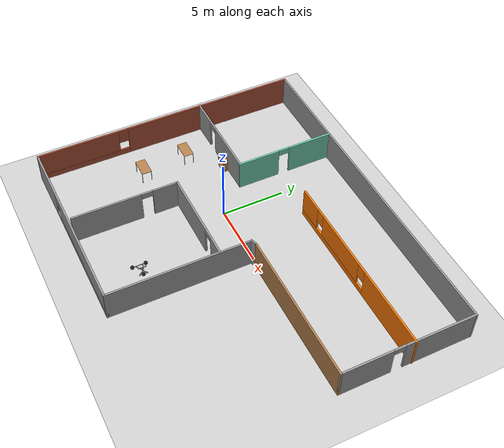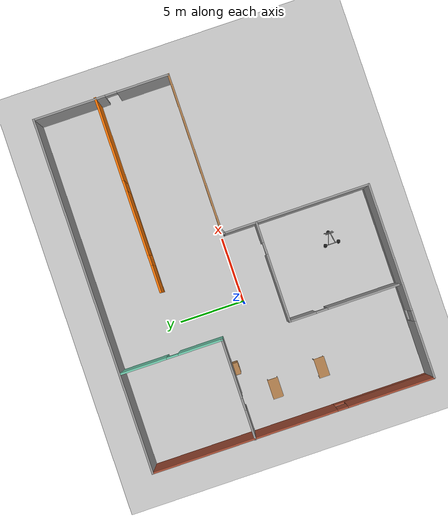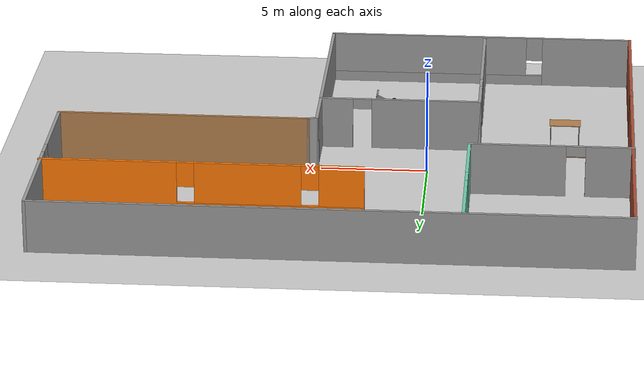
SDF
<sdf version="1.6">
 <world name="default">
  <model name="ground_plane">
   <static>1</static>
   <link name="link">
    <collision name="collision">
     <geometry><plane><normal>0 0 1</normal><size>100 100</size></plane></geometry>
     <surface>
      <contact><collide_bitmask>65535</collide_bitmask></contact>
      <friction><ode><mu>100</mu><mu2>50</mu2></ode></friction>
     </surface>
    </collision>
    <visual name="visual">
     <cast_shadows>0</cast_shadows>
     <geometry><plane><normal>0 0 1</normal><size>100 100</size></plane></geometry>
     <material>
      <script><uri>file://media/materials/scripts/gazebo.material</uri><name>Gazebo/Grey</name></script>
     </material>
    </visual>
   </link>
  </model>
  <model name="my_building_2">
   <pose>3.93106 -0.568762 0 0 -0 0</pose>
   <link name="Wall_0">
    <collision name="Wall_0_Collision">
     <geometry><box><size>12 0.15 2.5</size></box></geometry>
     <pose>0 0 1.25 0 -0 0</pose>
    </collision>
    <visual name="Wall_0_Visual">
     <pose>0 0 1.25 0 -0 0</pose>
     <geometry><box><size>12 0.15 2.5</size></box></geometry>
     <material>
      <script><uri>file://media/materials/scripts/gazebo.material</uri><name>Gazebo/Wood</name></script>
      <ambient>1 1 1 1</ambient>
     </material>
     <meta><layer>0</layer></meta>
    </visual>
    <pose>7.62074 0.45 0 0 -0 0</pose>
   </link>
   <link name="Wall_1">
    <pose>13.5457 5.625 0 0 -0 1.5708</pose>
    <visual name="Wall_1_Visual_0">
     <pose>-3.23149 0 1.25 0 -0 0</pose>
     <geometry><box><size>4.03702 0.15 2.5</size></box></geometry>
     <material>
      <script><uri>file://media/materials/scripts/gazebo.material</uri><name>Gazebo/Grey</name></script>
      <ambient>1 1 1 1</ambient>
     </material>
     <meta><layer>0</layer></meta>
    </visual>
    <collision name="Wall_1_Collision_0">
     <geometry><box><size>4.03702 0.15 2.5</size></box></geometry>
     <pose>-3.23149 0 1.25 0 -0 0</pose>
    </collision>
    <visual name="Wall_1_Visual_1">
     <pose>2.46851 0 1.25 0 -0 0</pose>
     <geometry><box><size>5.56298 0.15 2.5</size></box></geometry>
     <material>
      <script><uri>file://media/materials/scripts/gazebo.material</uri><name>Gazebo/Grey</name></script>
      <ambient>1 1 1 1</ambient>
     </material>
     <meta><layer>0</layer></meta>
    </visual>
    <collision name="Wall_1_Collision_1">
     <geometry><box><size>5.56298 0.15 2.5</size></box></geometry>
     <pose>2.46851 0 1.25 0 -0 0</pose>
    </collision>
    <visual name="Wall_1_Visual_2">
     <pose>-0.762977 0 2.25 0 -0 0</pose>
     <geometry><box><size>0.9 0.15 0.5</size></box></geometry>
     <material>
      <script><uri>file://media/materials/scripts/gazebo.material</uri><name>Gazebo/Grey</name></script>
      <ambient>1 1 1 1</ambient>
     </material>
     <meta><layer>0</layer></meta>
    </visual>
    <collision name="Wall_1_Collision_2">
     <geometry><box><size>0.9 0.15 0.5</size></box></geometry>
     <pose>-0.762977 0 2.25 0 -0 0</pose>
    </collision>
   </link>
   <link name="Wall_11">
    <pose>-9.79367 2.94549 0 0 -0 0</pose>
    <visual name="Wall_11_Visual_0">
     <pose>-2.72781 0 1.25 0 -0 0</pose>
     <geometry><box><size>2.29438 0.15 2.5</size></box></geometry>
     <material>
      <script><uri>file://media/materials/scripts/gazebo.material</uri><name>Gazebo/Grey</name></script>
      <ambient>1 1 1 1</ambient>
     </material>
     <meta><layer>0</layer></meta>
    </visual>
    <collision name="Wall_11_Collision_0">
     <geometry><box><size>2.29438 0.15 2.5</size></box></geometry>
     <pose>-2.72781 0 1.25 0 -0 0</pose>
    </collision>
    <visual name="Wall_11_Visual_1">
     <pose>1.59719 0 1.25 0 -0 0</pose>
     <geometry><box><size>4.55562 0.15 2.5</size></box></geometry>
     <material>
      <script><uri>file://media/materials/scripts/gazebo.material</uri><name>Gazebo/Grey</name></script>
      <ambient>1 1 1 1</ambient>
     </material>
     <meta><layer>0</layer></meta>
    </visual>
    <collision name="Wall_11_Collision_1">
     <geometry><box><size>4.55562 0.15 2.5</size></box></geometry>
     <pose>1.59719 0 1.25 0 -0 0</pose>
    </collision>
    <visual name="Wall_11_Visual_2">
     <pose>-1.13062 0 2.25 0 -0 0</pose>
     <geometry><box><size>0.9 0.15 0.5</size></box></geometry>
     <material>
      <script><uri>file://media/materials/scripts/gazebo.material</uri><name>Gazebo/Grey</name></script>
      <ambient>1 1 1 1</ambient>
     </material>
     <meta><layer>0</layer></meta>
    </visual>
    <collision name="Wall_11_Collision_2">
     <geometry><box><size>0.9 0.15 0.5</size></box></geometry>
     <pose>-1.13062 0 2.25 0 -0 0</pose>
    </collision>
   </link>
   <link name="Wall_12">
    <pose>-5.99367 6.87049 0 0 -0 1.5708</pose>
    <visual name="Wall_12_Visual_0">
     <pose>-2.28693 0 1.25 0 -0 0</pose>
     <geometry><box><size>3.42615 0.15 2.5</size></box></geometry>
     <material>
      <script><uri>file://media/materials/scripts/gazebo.material</uri><name>Gazebo/Grey</name></script>
      <ambient>0.435294 0.796078 0.67451 1</ambient>
     </material>
     <meta><layer>0</layer></meta>
    </visual>
    <collision name="Wall_12_Collision_0">
     <geometry><box><size>3.42615 0.15 2.5</size></box></geometry>
     <pose>-2.28693 0 1.25 0 -0 0</pose>
    </collision>
    <visual name="Wall_12_Visual_1">
     <pose>2.16307 0 1.25 0 -0 0</pose>
     <geometry><box><size>3.67385 0.15 2.5</size></box></geometry>
     <material>
      <script><uri>file://media/materials/scripts/gazebo.material</uri><name>Gazebo/Grey</name></script>
      <ambient>0.435294 0.796078 0.67451 1</ambient>
     </material>
     <meta><layer>0</layer></meta>
    </visual>
    <collision name="Wall_12_Collision_1">
     <geometry><box><size>3.67385 0.15 2.5</size></box></geometry>
     <pose>2.16307 0 1.25 0 -0 0</pose>
    </collision>
    <visual name="Wall_12_Visual_2">
     <pose>-0.123853 0 2.25 0 -0 0</pose>
     <geometry><box><size>0.9 0.15 0.5</size></box></geometry>
     <material>
      <script><uri>file://media/materials/scripts/gazebo.material</uri><name>Gazebo/Grey</name></script>
      <ambient>0.435294 0.796078 0.67451 1</ambient>
     </material>
     <meta><layer>0</layer></meta>
    </visual>
    <collision name="Wall_12_Collision_2">
     <geometry><box><size>0.9 0.15 0.5</size></box></geometry>
     <pose>-0.123853 0 2.25 0 -0 0</pose>
    </collision>
   </link>
   <link name="Wall_14">
    <pose>6.16866 6.05106 0 0 -0 3.14159</pose>
    <visual name="Wall_14_Visual_0">
     <pose>-4.30847 0 1.25 0 -0 0</pose>
     <geometry><box><size>6.38305 0.15 2.5</size></box></geometry>
     <material>
      <script><uri>file://media/materials/scripts/gazebo.material</uri><name>Gazebo/Grey</name></script>
      <ambient>0.996078 0.47451 0.0196078 1</ambient>
     </material>
     <meta><layer>0</layer></meta>
    </visual>
    <collision name="Wall_14_Collision_0">
     <geometry><box><size>6.38305 0.15 2.5</size></box></geometry>
     <pose>-4.30847 0 1.25 0 -0 0</pose>
    </collision>
    <visual name="Wall_14_Visual_1">
     <pose>3.19152 0 0.25 0 -0 0</pose>
     <geometry><box><size>8.61695 0.15 0.5</size></box></geometry>
     <material>
      <script><uri>file://media/materials/scripts/gazebo.material</uri><name>Gazebo/Grey</name></script>
      <ambient>0.996078 0.47451 0.0196078 1</ambient>
     </material>
     <meta><layer>0</layer></meta>
    </visual>
    <collision name="Wall_14_Collision_1">
     <geometry><box><size>8.61695 0.15 0.5</size></box></geometry>
     <pose>3.19152 0 0.25 0 -0 0</pose>
    </collision>
    <visual name="Wall_14_Visual_2">
     <pose>2.1413 0 1.5 0 -0 0</pose>
     <geometry><box><size>4.9165 0.15 2</size></box></geometry>
     <material>
      <script><uri>file://media/materials/scripts/gazebo.material</uri><name>Gazebo/Grey</name></script>
      <ambient>0.996078 0.47451 0.0196078 1</ambient>
     </material>
     <meta><layer>0</layer></meta>
    </visual>
    <collision name="Wall_14_Collision_2">
     <geometry><box><size>4.9165 0.15 2</size></box></geometry>
     <pose>2.1413 0 1.5 0 -0 0</pose>
    </collision>
    <visual name="Wall_14_Visual_3">
     <pose>6.44977 0 1.5 0 -0 0</pose>
     <geometry><box><size>2.10045 0.15 2</size></box></geometry>
     <material>
      <script><uri>file://media/materials/scripts/gazebo.material</uri><name>Gazebo/Grey</name></script>
      <ambient>0.996078 0.47451 0.0196078 1</ambient>
     </material>
     <meta><layer>0</layer></meta>
    </visual>
    <collision name="Wall_14_Collision_3">
     <geometry><box><size>2.10045 0.15 2</size></box></geometry>
     <pose>6.44977 0 1.5 0 -0 0</pose>
    </collision>
    <visual name="Wall_14_Visual_4">
     <pose>-0.716949 0 1.9 0 -0 0</pose>
     <geometry><box><size>0.8 0.15 1.2</size></box></geometry>
     <material>
      <script><uri>file://media/materials/scripts/gazebo.material</uri><name>Gazebo/Grey</name></script>
      <ambient>0.996078 0.47451 0.0196078 1</ambient>
     </material>
     <meta><layer>0</layer></meta>
    </visual>
    <collision name="Wall_14_Collision_4">
     <geometry><box><size>0.8 0.15 1.2</size></box></geometry>
     <pose>-0.716949 0 1.9 0 -0 0</pose>
    </collision>
    <visual name="Wall_14_Visual_5">
     <pose>4.99955 0 1.9 0 -0 0</pose>
     <geometry><box><size>0.8 0.15 1.2</size></box></geometry>
     <material>
      <script><uri>file://media/materials/scripts/gazebo.material</uri><name>Gazebo/Grey</name></script>
      <ambient>0.996078 0.47451 0.0196078 1</ambient>
     </material>
     <meta><layer>0</layer></meta>
    </visual>
    <collision name="Wall_14_Collision_5">
     <geometry><box><size>0.8 0.15 1.2</size></box></geometry>
     <pose>4.99955 0 1.9 0 -0 0</pose>
    </collision>
   </link>
   <link name="Wall_2">
    <collision name="Wall_2_Collision">
     <geometry><box><size>27.25 0.15 2.5</size></box></geometry>
     <pose>0 0 1.25 0 -0 0</pose>
    </collision>
    <visual name="Wall_2_Visual">
     <pose>0 0 1.25 0 -0 0</pose>
     <geometry><box><size>27.25 0.15 2.5</size></box></geometry>
     <material>
      <script><uri>file://media/materials/scripts/gazebo.material</uri><name>Gazebo/Grey</name></script>
      <ambient>1 1 1 1</ambient>
     </material>
     <meta><layer>0</layer></meta>
    </visual>
    <pose>-0.004262 10.8 0 0 -0 3.14159</pose>
   </link>
   <link name="Wall_3">
    <pose>-13.5543 0 0 0 0 -1.5708</pose>
    <visual name="Wall_3_Visual_0">
     <pose>-3.74336 0 1.25 0 -0 0</pose>
     <geometry><box><size>14.2633 0.15 2.5</size></box></geometry>
     <material>
      <script><uri>file://media/materials/scripts/gazebo.material</uri><name>Gazebo/Bricks</name></script>
      <ambient>1 1 1 1</ambient>
     </material>
     <meta><layer>0</layer></meta>
    </visual>
    <collision name="Wall_3_Collision_0">
     <geometry><box><size>14.2633 0.15 2.5</size></box></geometry>
     <pose>-3.74336 0 1.25 0 -0 0</pose>
    </collision>
    <visual name="Wall_3_Visual_1">
     <pose>7.13164 0 0.25 0 -0 0</pose>
     <geometry><box><size>7.48672 0.15 0.5</size></box></geometry>
     <material>
      <script><uri>file://media/materials/scripts/gazebo.material</uri><name>Gazebo/Bricks</name></script>
      <ambient>1 1 1 1</ambient>
     </material>
     <meta><layer>0</layer></meta>
    </visual>
    <collision name="Wall_3_Collision_1">
     <geometry><box><size>7.48672 0.15 0.5</size></box></geometry>
     <pose>7.13164 0 0.25 0 -0 0</pose>
    </collision>
    <visual name="Wall_3_Visual_2">
     <pose>7.53164 0 1.5 0 -0 0</pose>
     <geometry><box><size>6.68672 0.15 2</size></box></geometry>
     <material>
      <script><uri>file://media/materials/scripts/gazebo.material</uri><name>Gazebo/Bricks</name></script>
      <ambient>1 1 1 1</ambient>
     </material>
     <meta><layer>0</layer></meta>
    </visual>
    <collision name="Wall_3_Collision_2">
     <geometry><box><size>6.68672 0.15 2</size></box></geometry>
     <pose>7.53164 0 1.5 0 -0 0</pose>
    </collision>
    <visual name="Wall_3_Visual_3">
     <pose>3.78828 0 1.9 0 -0 0</pose>
     <geometry><box><size>0.8 0.15 1.2</size></box></geometry>
     <material>
      <script><uri>file://media/materials/scripts/gazebo.material</uri><name>Gazebo/Bricks</name></script>
      <ambient>1 1 1 1</ambient>
     </material>
     <meta><layer>0</layer></meta>
    </visual>
    <collision name="Wall_3_Collision_3">
     <geometry><box><size>0.8 0.15 1.2</size></box></geometry>
     <pose>3.78828 0 1.9 0 -0 0</pose>
    </collision>
   </link>
   <link name="Wall_4">
    <pose>-6.12926 -10.8 0 0 -0 0</pose>
    <visual name="Wall_4_Visual_0">
     <pose>-5.28668 0 1.25 0 -0 0</pose>
     <geometry><box><size>4.42664 0.15 2.5</size></box></geometry>
     <material>
      <script><uri>file://media/materials/scripts/gazebo.material</uri><name>Gazebo/Grey</name></script>
      <ambient>1 1 1 1</ambient>
     </material>
     <meta><layer>0</layer></meta>
    </visual>
    <collision name="Wall_4_Collision_0">
     <geometry><box><size>4.42664 0.15 2.5</size></box></geometry>
     <pose>-5.28668 0 1.25 0 -0 0</pose>
    </collision>
    <visual name="Wall_4_Visual_1">
     <pose>2.21332 0 0.25 0 -0 0</pose>
     <geometry><box><size>10.5734 0.15 0.5</size></box></geometry>
     <material>
      <script><uri>file://media/materials/scripts/gazebo.material</uri><name>Gazebo/Grey</name></script>
      <ambient>1 1 1 1</ambient>
     </material>
     <meta><layer>0</layer></meta>
    </visual>
    <collision name="Wall_4_Collision_1">
     <geometry><box><size>10.5734 0.15 0.5</size></box></geometry>
     <pose>2.21332 0 0.25 0 -0 0</pose>
    </collision>
    <visual name="Wall_4_Visual_2">
     <pose>2.61332 0 1.5 0 -0 0</pose>
     <geometry><box><size>9.77336 0.15 2</size></box></geometry>
     <material>
      <script><uri>file://media/materials/scripts/gazebo.material</uri><name>Gazebo/Grey</name></script>
      <ambient>1 1 1 1</ambient>
     </material>
     <meta><layer>0</layer></meta>
    </visual>
    <collision name="Wall_4_Collision_2">
     <geometry><box><size>9.77336 0.15 2</size></box></geometry>
     <pose>2.61332 0 1.5 0 -0 0</pose>
    </collision>
    <visual name="Wall_4_Visual_3">
     <pose>-2.67335 0 1.9 0 -0 0</pose>
     <geometry><box><size>0.8 0.15 1.2</size></box></geometry>
     <material>
      <script><uri>file://media/materials/scripts/gazebo.material</uri><name>Gazebo/Grey</name></script>
      <ambient>1 1 1 1</ambient>
     </material>
     <meta><layer>0</layer></meta>
    </visual>
    <collision name="Wall_4_Collision_3">
     <geometry><box><size>0.8 0.15 1.2</size></box></geometry>
     <pose>-2.67335 0 1.9 0 -0 0</pose>
    </collision>
   </link>
   <link name="Wall_5">
    <collision name="Wall_5_Collision">
     <geometry><box><size>11.25 0.15 2.5</size></box></geometry>
     <pose>0 0 1.25 0 -0 0</pose>
    </collision>
    <visual name="Wall_5_Visual">
     <pose>0 0 1.25 0 -0 0</pose>
     <geometry><box><size>11.25 0.15 2.5</size></box></geometry>
     <material>
      <script><uri>file://media/materials/scripts/gazebo.material</uri><name>Gazebo/Grey</name></script>
      <ambient>1 1 1 1</ambient>
     </material>
     <meta><layer>0</layer></meta>
    </visual>
    <pose>1.29574 -5.25 0 0 -0 1.5708</pose>
   </link>
   <link name="Wall_6">
    <collision name="Wall_6_Collision">
     <geometry><box><size>0.5772 0.15 2.5</size></box></geometry>
     <pose>0 0 1.25 0 -0 0</pose>
    </collision>
    <visual name="Wall_6_Visual">
     <pose>0 0 1.25 0 -0 0</pose>
     <geometry><box><size>0.5772 0.15 2.5</size></box></geometry>
     <material>
      <script><uri>file://media/materials/scripts/gazebo.material</uri><name>Gazebo/Grey</name></script>
      <ambient>1 1 1 1</ambient>
     </material>
     <meta><layer>0</layer></meta>
    </visual>
    <pose>1.49574 0.375 0 0 -0 0.358771</pose>
   </link>
   <link name="Wall_8">
    <pose>-2.51405 -2.16502 0 0 -0 3.14159</pose>
    <visual name="Wall_8_Visual_0">
     <pose>-3.0702 0 1.25 0 -0 0</pose>
     <geometry><box><size>1.60959 0.15 2.5</size></box></geometry>
     <material>
      <script><uri>file://media/materials/scripts/gazebo.material</uri><name>Gazebo/Grey</name></script>
      <ambient>1 1 1 1</ambient>
     </material>
     <meta><layer>0</layer></meta>
    </visual>
    <collision name="Wall_8_Collision_0">
     <geometry><box><size>1.60959 0.15 2.5</size></box></geometry>
     <pose>-3.0702 0 1.25 0 -0 0</pose>
    </collision>
    <visual name="Wall_8_Visual_1">
     <pose>1.2548 0 1.25 0 -0 0</pose>
     <geometry><box><size>5.24041 0.15 2.5</size></box></geometry>
     <material>
      <script><uri>file://media/materials/scripts/gazebo.material</uri><name>Gazebo/Grey</name></script>
      <ambient>1 1 1 1</ambient>
     </material>
     <meta><layer>0</layer></meta>
    </visual>
    <collision name="Wall_8_Collision_1">
     <geometry><box><size>5.24041 0.15 2.5</size></box></geometry>
     <pose>1.2548 0 1.25 0 -0 0</pose>
    </collision>
    <visual name="Wall_8_Visual_2">
     <pose>-1.81541 0 2.25 0 -0 0</pose>
     <geometry><box><size>0.9 0.15 0.5</size></box></geometry>
     <material>
      <script><uri>file://media/materials/scripts/gazebo.material</uri><name>Gazebo/Grey</name></script>
      <ambient>1 1 1 1</ambient>
     </material>
     <meta><layer>0</layer></meta>
    </visual>
    <collision name="Wall_8_Collision_2">
     <geometry><box><size>0.9 0.15 0.5</size></box></geometry>
     <pose>-1.81541 0 2.25 0 -0 0</pose>
    </collision>
   </link>
   <link name="Wall_9">
    <pose>-6.31405 -6.34002 0 0 0 -1.5708</pose>
    <visual name="Wall_9_Visual_0">
     <pose>-3.20629 0 1.25 0 -0 0</pose>
     <geometry><box><size>2.08743 0.15 2.5</size></box></geometry>
     <material>
      <script><uri>file://media/materials/scripts/gazebo.material</uri><name>Gazebo/Grey</name></script>
      <ambient>1 1 1 1</ambient>
     </material>
     <meta><layer>0</layer></meta>
    </visual>
    <collision name="Wall_9_Collision_0">
     <geometry><box><size>2.08743 0.15 2.5</size></box></geometry>
     <pose>-3.20629 0 1.25 0 -0 0</pose>
    </collision>
    <visual name="Wall_9_Visual_1">
     <pose>1.49371 0 1.25 0 -0 0</pose>
     <geometry><box><size>5.51258 0.15 2.5</size></box></geometry>
     <material>
      <script><uri>file://media/materials/scripts/gazebo.material</uri><name>Gazebo/Grey</name></script>
      <ambient>1 1 1 1</ambient>
     </material>
     <meta><layer>0</layer></meta>
    </visual>
    <collision name="Wall_9_Collision_1">
     <geometry><box><size>5.51258 0.15 2.5</size></box></geometry>
     <pose>1.49371 0 1.25 0 -0 0</pose>
    </collision>
    <visual name="Wall_9_Visual_2">
     <pose>-1.71257 0 2.25 0 -0 0</pose>
     <geometry><box><size>0.9 0.15 0.5</size></box></geometry>
     <material>
      <script><uri>file://media/materials/scripts/gazebo.material</uri><name>Gazebo/Grey</name></script>
      <ambient>1 1 1 1</ambient>
     </material>
     <meta><layer>0</layer></meta>
    </visual>
    <collision name="Wall_9_Collision_2">
     <geometry><box><size>0.9 0.15 0.5</size></box></geometry>
     <pose>-1.71257 0 2.25 0 -0 0</pose>
    </collision>
   </link>
   <static>1</static>
  </model>
  <model name="bookshelf">
   <static>1</static>
   <link name="link">
    <inertial><mass>1</mass></inertial>
    <collision name="back">
     <pose>0 0.005 0.6 0 -0 0</pose>
     <geometry><box><size>0.9 0.01 1.2</size></box></geometry>
    </collision>
    <visual name="visual1">
     <pose>0 0.005 0.6 0 -0 0</pose>
     <geometry><box><size>0.9 0.01 1.2</size></box></geometry>
     <material>
      <script><uri>file://media/materials/scripts/gazebo.material</uri><name>Gazebo/Wood</name></script>
     </material>
    </visual>
    <collision name="left_side">
     <pose>0.45 -0.195 0.6 0 -0 0</pose>
     <geometry><box><size>0.02 0.4 1.2</size></box></geometry>
    </collision>
    <visual name="visual2">
     <pose>0.45 -0.195 0.6 0 -0 0</pose>
     <geometry><box><size>0.02 0.4 1.2</size></box></geometry>
     <material>
      <script><uri>file://media/materials/scripts/gazebo.material</uri><name>Gazebo/Wood</name></script>
     </material>
    </visual>
    <collision name="right_side">
     <pose>-0.45 -0.195 0.6 0 -0 0</pose>
     <geometry><box><size>0.02 0.4 1.2</size></box></geometry>
    </collision>
    <visual name="visual3">
     <pose>-0.45 -0.195 0.6 0 -0 0</pose>
     <geometry><box><size>0.02 0.4 1.2</size></box></geometry>
     <material>
      <script><uri>file://media/materials/scripts/gazebo.material</uri><name>Gazebo/Wood</name></script>
     </material>
    </visual>
    <collision name="bottom">
     <pose>0 -0.195 0.03 0 -0 0</pose>
     <geometry><box><size>0.88 0.4 0.06</size></box></geometry>
    </collision>
    <visual name="visual4">
     <pose>0 -0.195 0.03 0 -0 0</pose>
     <geometry><box><size>0.88 0.4 0.06</size></box></geometry>
     <material>
      <script><uri>file://media/materials/scripts/gazebo.material</uri><name>Gazebo/Wood</name></script>
     </material>
    </visual>
    <collision name="top">
     <pose>0 -0.195 1.19 0 -0 0</pose>
     <geometry><box><size>0.88 0.4 0.02</size></box></geometry>
    </collision>
    <visual name="visual5">
     <pose>0 -0.195 1.19 0 -0 0</pose>
     <geometry><box><size>0.88 0.4 0.02</size></box></geometry>
     <material>
      <script><uri>file://media/materials/scripts/gazebo.material</uri><name>Gazebo/Wood</name></script>
     </material>
    </visual>
    <collision name="low_shelf">
     <pose>0 -0.195 0.43 0 -0 0</pose>
     <geometry><box><size>0.88 0.4 0.02</size></box></geometry>
    </collision>
    <visual name="visual6">
     <pose>0 -0.195 0.43 0 -0 0</pose>
     <geometry><box><size>0.88 0.4 0.02</size></box></geometry>
     <material>
      <script><uri>file://media/materials/scripts/gazebo.material</uri><name>Gazebo/Wood</name></script>
     </material>
    </visual>
    <collision name="high_shelf">
     <pose>0 -0.195 0.8 0 -0 0</pose>
     <geometry><box><size>0.88 0.4 0.02</size></box></geometry>
    </collision>
    <visual name="visual7">
     <pose>0 -0.195 0.8 0 -0 0</pose>
     <geometry><box><size>0.88 0.4 0.02</size></box></geometry>
     <material>
      <script><uri>file://media/materials/scripts/gazebo.material</uri><name>Gazebo/Wood</name></script>
     </material>
    </visual>
   </link>
   <pose>-4.5392 2.25487 0 0 -0 0</pose>
  </model>
  <model name="table">
   <static>1</static>
   <link name="link">
    <collision name="surface">
     <pose>0 0 1 0 -0 0</pose>
     <geometry><box><size>1.5 0.8 0.03</size></box></geometry>
     <surface><friction><ode><mu>0.6</mu><mu2>0.6</mu2></ode></friction></surface>
    </collision>
    <visual name="visual1">
     <pose>0 0 1 0 -0 0</pose>
     <geometry><box><size>1.5 0.8 0.03</size></box></geometry>
     <material>
      <script><uri>file://media/materials/scripts/gazebo.material</uri><name>Gazebo/Wood</name></script>
     </material>
    </visual>
    <collision name="front_left_leg">
     <pose>0.68 0.38 0.5 0 -0 0</pose>
     <geometry><cylinder><radius>0.02</radius><length>1</length></cylinder></geometry>
    </collision>
    <visual name="front_left_leg">
     <pose>0.68 0.38 0.5 0 -0 0</pose>
     <geometry><cylinder><radius>0.02</radius><length>1</length></cylinder></geometry>
     <material>
      <script><uri>file://media/materials/scripts/gazebo.material</uri><name>Gazebo/Grey</name></script>
     </material>
    </visual>
    <collision name="front_right_leg">
     <pose>0.68 -0.38 0.5 0 -0 0</pose>
     <geometry><cylinder><radius>0.02</radius><length>1</length></cylinder></geometry>
    </collision>
    <visual name="front_right_leg">
     <pose>0.68 -0.38 0.5 0 -0 0</pose>
     <geometry><cylinder><radius>0.02</radius><length>1</length></cylinder></geometry>
     <material>
      <script><uri>file://media/materials/scripts/gazebo.material</uri><name>Gazebo/Grey</name></script>
     </material>
    </visual>
    <collision name="back_right_leg">
     <pose>-0.68 -0.38 0.5 0 -0 0</pose>
     <geometry><cylinder><radius>0.02</radius><length>1</length></cylinder></geometry>
    </collision>
    <visual name="back_right_leg">
     <pose>-0.68 -0.38 0.5 0 -0 0</pose>
     <geometry><cylinder><radius>0.02</radius><length>1</length></cylinder></geometry>
     <material>
      <script><uri>file://media/materials/scripts/gazebo.material</uri><name>Gazebo/Grey</name></script>
     </material>
    </visual>
    <collision name="back_left_leg">
     <pose>-0.68 0.38 0.5 0 -0 0</pose>
     <geometry><cylinder><radius>0.02</radius><length>1</length></cylinder></geometry>
    </collision>
    <visual name="back_left_leg">
     <pose>-0.68 0.38 0.5 0 -0 0</pose>
     <geometry><cylinder><radius>0.02</radius><length>1</length></cylinder></geometry>
     <material>
      <script><uri>file://media/materials/scripts/gazebo.material</uri><name>Gazebo/Grey</name></script>
     </material>
    </visual>
   </link>
   <pose>-6.86365 -0.207084 0 0 -0 0</pose>
  </model>
  <model name="table_0">
   <static>1</static>
   <link name="link">
    <collision name="surface">
     <pose>0 0 1 0 -0 0</pose>
     <geometry><box><size>1.5 0.8 0.03</size></box></geometry>
     <surface><friction><ode><mu>0.6</mu><mu2>0.6</mu2></ode></friction></surface>
    </collision>
    <visual name="visual1">
     <pose>0 0 1 0 -0 0</pose>
     <geometry><box><size>1.5 0.8 0.03</size></box></geometry>
     <material>
      <script><uri>file://media/materials/scripts/gazebo.material</uri><name>Gazebo/Wood</name></script>
     </material>
    </visual>
    <collision name="front_left_leg">
     <pose>0.68 0.38 0.5 0 -0 0</pose>
     <geometry><cylinder><radius>0.02</radius><length>1</length></cylinder></geometry>
    </collision>
    <visual name="front_left_leg">
     <pose>0.68 0.38 0.5 0 -0 0</pose>
     <geometry><cylinder><radius>0.02</radius><length>1</length></cylinder></geometry>
     <material>
      <script><uri>file://media/materials/scripts/gazebo.material</uri><name>Gazebo/Grey</name></script>
     </material>
    </visual>
    <collision name="front_right_leg">
     <pose>0.68 -0.38 0.5 0 -0 0</pose>
     <geometry><cylinder><radius>0.02</radius><length>1</length></cylinder></geometry>
    </collision>
    <visual name="front_right_leg">
     <pose>0.68 -0.38 0.5 0 -0 0</pose>
     <geometry><cylinder><radius>0.02</radius><length>1</length></cylinder></geometry>
     <material>
      <script><uri>file://media/materials/scripts/gazebo.material</uri><name>Gazebo/Grey</name></script>
     </material>
    </visual>
    <collision name="back_right_leg">
     <pose>-0.68 -0.38 0.5 0 -0 0</pose>
     <geometry><cylinder><radius>0.02</radius><length>1</length></cylinder></geometry>
    </collision>
    <visual name="back_right_leg">
     <pose>-0.68 -0.38 0.5 0 -0 0</pose>
     <geometry><cylinder><radius>0.02</radius><length>1</length></cylinder></geometry>
     <material>
      <script><uri>file://media/materials/scripts/gazebo.material</uri><name>Gazebo/Grey</name></script>
     </material>
    </visual>
    <collision name="back_left_leg">
     <pose>-0.68 0.38 0.5 0 -0 0</pose>
     <geometry><cylinder><radius>0.02</radius><length>1</length></cylinder></geometry>
    </collision>
    <visual name="back_left_leg">
     <pose>-0.68 0.38 0.5 0 -0 0</pose>
     <geometry><cylinder><radius>0.02</radius><length>1</length></cylinder></geometry>
     <material>
      <script><uri>file://media/materials/scripts/gazebo.material</uri><name>Gazebo/Grey</name></script>
     </material>
    </visual>
   </link>
   <pose>-6.4843 -3.96788 0 0 -0 0</pose>
  </model>
  <model name="trisphere_cycle">
   <link name="frame">
    <pose>-0.408559 0 0.385023 0 -0.522021 0</pose>
    <inertial>
     <mass>10</mass>
     <inertia><ixx>0.228</ixx><iyy>0.743521</iyy><izz>0.965521</izz><ixy>0</ixy><ixz>0</ixz><iyz>0</iyz></inertia>
    </inertial>
    <collision name="axle_collision">
     <pose>-0.471335 0 0 1.5708 -0 0</pose>
     <geometry><cylinder><length>1.03923</length><radius>0.03</radius></cylinder></geometry>
    </collision>
    <visual name="axle_visual">
     <pose>-0.471335 0 0 1.5708 -0 0</pose>
     <geometry><cylinder><length>1.03923</length><radius>0.03</radius></cylinder></geometry>
     <material>
      <script><uri>file://media/materials/scripts/gazebo.material</uri><name>Gazebo/Grey</name></script>
     </material>
    </visual>
    <collision name="frame_left_collision">
     <pose>0 0.171552 0 2.986 1.57079 2.76675</pose>
     <geometry><cylinder><length>1.00317</length><radius>0.03</radius></cylinder></geometry>
    </collision>
    <visual name="frame_left_visual">
     <pose>0 0.171552 0 2.986 1.57079 2.76675</pose>
     <geometry><cylinder><length>1.00317</length><radius>0.03</radius></cylinder></geometry>
     <material>
      <script><uri>file://media/materials/scripts/gazebo.material</uri><name>Gazebo/Grey</name></script>
     </material>
    </visual>
    <collision name="frame_right_collision">
     <pose>0 -0.171552 0 -2.986 1.57079 -2.76675</pose>
     <geometry><cylinder><length>1.00317</length><radius>0.03</radius></cylinder></geometry>
    </collision>
    <visual name="frame_right_visual">
     <pose>0 -0.171552 0 -2.986 1.57079 -2.76675</pose>
     <geometry><cylinder><length>1.00317</length><radius>0.03</radius></cylinder></geometry>
     <material>
      <script><uri>file://media/materials/scripts/gazebo.material</uri><name>Gazebo/Grey</name></script>
     </material>
    </visual>
   </link>
   <link name="fork">
    <pose>0.041441 0 0.385023 0 -0.174533 0</pose>
    <inertial>
     <mass>3</mass>
     <inertia>
      <ixx>0.158203</ixx>
      <iyy>0.0583594</iyy>
      <izz>0.102656</izz>
      <ixy>0</ixy>
      <ixz>0</ixz>
      <iyz>0</iyz>
     </inertia>
    </inertial>
    <collision name="handlebars_collision">
     <pose>0 0 0.397748 1.5708 -0 0</pose>
     <geometry><cylinder><length>0.636396</length><radius>0.0375</radius></cylinder></geometry>
    </collision>
    <visual name="handlebars_visual">
     <pose>0 0 0.397748 1.5708 -0 0</pose>
     <geometry><cylinder><length>0.636396</length><radius>0.0375</radius></cylinder></geometry>
     <material>
      <script><uri>file://media/materials/scripts/gazebo.material</uri><name>Gazebo/Grey</name></script>
     </material>
    </visual>
    <collision name="headtube_collision">
     <pose>0 0 0.238649 0 -0 0</pose>
     <geometry><cylinder><length>0.318198</length><radius>0.0375</radius></cylinder></geometry>
    </collision>
    <visual name="headtube_visual">
     <pose>0 0 0.238649 0 -0 0</pose>
     <geometry><cylinder><length>0.318198</length><radius>0.0375</radius></cylinder></geometry>
     <material>
      <script><uri>file://media/materials/scripts/gazebo.material</uri><name>Gazebo/Grey</name></script>
     </material>
    </visual>
    <collision name="spindle_collision">
     <pose>0 0 -0.238649 1.5708 -0 0</pose>
     <geometry><cylinder><length>0.636396</length><radius>0.015</radius></cylinder></geometry>
    </collision>
    <visual name="spindle_visual">
     <pose>0 0 -0.238649 1.5708 -0 0</pose>
     <geometry><cylinder><length>0.636396</length><radius>0.015</radius></cylinder></geometry>
     <material>
      <script><uri>file://media/materials/scripts/gazebo.material</uri><name>Gazebo/Grey</name></script>
     </material>
    </visual>
    <collision name="fork_left_collision">
     <pose>0 0.159099 -0.07955 0.785398 -0 0</pose>
     <geometry><cylinder><length>0.45</length><radius>0.0375</radius></cylinder></geometry>
    </collision>
    <visual name="fork_left_visual">
     <pose>0 0.159099 -0.07955 0.785398 -0 0</pose>
     <geometry><cylinder><length>0.45</length><radius>0.0375</radius></cylinder></geometry>
     <material>
      <script><uri>file://media/materials/scripts/gazebo.material</uri><name>Gazebo/Grey</name></script>
     </material>
    </visual>
    <collision name="fork_right_collision">
     <pose>0 -0.159099 -0.07955 -0.785398 0 0</pose>
     <geometry><cylinder><length>0.45</length><radius>0.0375</radius></cylinder></geometry>
    </collision>
    <visual name="fork_right_visual">
     <pose>0 -0.159099 -0.07955 -0.785398 0 0</pose>
     <geometry><cylinder><length>0.45</length><radius>0.0375</radius></cylinder></geometry>
     <material>
      <script><uri>file://media/materials/scripts/gazebo.material</uri><name>Gazebo/Grey</name></script>
     </material>
    </visual>
   </link>
   <link name="wheel_front">
    <pose>0.082882 0 0.15 0 -0 0</pose>
    <inertial>
     <mass>0.5</mass>
     <inertia><ixx>0.0045</ixx><iyy>0.0045</iyy><izz>0.0045</izz><ixy>0</ixy><ixz>0</ixz><iyz>0</iyz></inertia>
    </inertial>
    <collision name="collision">
     <geometry><sphere><radius>0.15</radius></sphere></geometry>
     <surface><contact><ode><kp>1e+08</kp><kd>1</kd><min_depth>0.0005</min_depth></ode></contact></surface>
    </collision>
    <visual name="visual">
     <geometry><sphere><radius>0.15</radius></sphere></geometry>
     <material>
      <script><uri>file://media/materials/scripts/gazebo.material</uri><name>Gazebo/Black</name></script>
     </material>
    </visual>
   </link>
   <joint name="wheel_front_steer" type="revolute">
    <parent>frame</parent>
    <child>fork</child>
    <axis>
     <xyz>0 0 1</xyz>
     <limit><lower>-0.959931</lower><upper>0.959931</upper></limit>
     <use_parent_model_frame>0</use_parent_model_frame>
     <dynamics><spring_reference>0</spring_reference><spring_stiffness>0</spring_stiffness></dynamics>
    </axis>
   </joint>
   <joint name="wheel_front_spin" type="revolute">
    <parent>fork</parent>
    <child>wheel_front</child>
    <axis>
     <xyz>0 1 0</xyz>
     <use_parent_model_frame>0</use_parent_model_frame>
     <limit><lower>-1e+16</lower><upper>1e+16</upper></limit>
     <dynamics><spring_reference>0</spring_reference><spring_stiffness>0</spring_stiffness></dynamics>
    </axis>
   </joint>
   <link name="wheel_rear_left">
    <pose>-0.817118 0.519615 0.15 0 -0 0</pose>
    <inertial>
     <mass>0.5</mass>
     <inertia><ixx>0.0045</ixx><iyy>0.0045</iyy><izz>0.0045</izz><ixy>0</ixy><ixz>0</ixz><iyz>0</iyz></inertia>
    </inertial>
    <collision name="collision">
     <geometry><sphere><radius>0.15</radius></sphere></geometry>
     <surface><contact><ode><kp>1e+08</kp><kd>1</kd><min_depth>0.0005</min_depth></ode></contact></surface>
    </collision>
    <visual name="visual">
     <geometry><sphere><radius>0.15</radius></sphere></geometry>
     <material>
      <script><uri>file://media/materials/scripts/gazebo.material</uri><name>Gazebo/Black</name></script>
     </material>
    </visual>
   </link>
   <joint name="wheel_rear_left_spin" type="revolute">
    <parent>frame</parent>
    <child>wheel_rear_left</child>
    <axis>
     <xyz>0 1 0</xyz>
     <use_parent_model_frame>0</use_parent_model_frame>
     <limit><lower>-1e+16</lower><upper>1e+16</upper></limit>
     <dynamics><spring_reference>0</spring_reference><spring_stiffness>0</spring_stiffness></dynamics>
    </axis>
   </joint>
   <link name="wheel_rear_right">
    <pose>-0.817118 -0.519615 0.15 0 -0 0</pose>
    <inertial>
     <mass>0.5</mass>
     <inertia><ixx>0.0045</ixx><iyy>0.0045</iyy><izz>0.0045</izz><ixy>0</ixy><ixz>0</ixz><iyz>0</iyz></inertia>
    </inertial>
    <collision name="collision">
     <geometry><sphere><radius>0.15</radius></sphere></geometry>
     <surface><contact><ode><kp>1e+08</kp><kd>1</kd><min_depth>0.0005</min_depth></ode></contact></surface>
    </collision>
    <visual name="visual">
     <geometry><sphere><radius>0.15</radius></sphere></geometry>
     <material>
      <script><uri>file://media/materials/scripts/gazebo.material</uri><name>Gazebo/Black</name></script>
     </material>
    </visual>
   </link>
   <joint name="wheel_rear_right_spin" type="revolute">
    <parent>frame</parent>
    <child>wheel_rear_right</child>
    <axis>
     <xyz>0 1 0</xyz>
     <use_parent_model_frame>0</use_parent_model_frame>
     <limit><lower>-1e+16</lower><upper>1e+16</upper></limit>
     <dynamics><spring_reference>0</spring_reference><spring_stiffness>0</spring_stiffness></dynamics>
    </axis>
   </joint>
   <pose>2.81794 -7.76244 -0.000501 -0 1e-06 -0.000313</pose>
  </model>
 </world>
</sdf>
